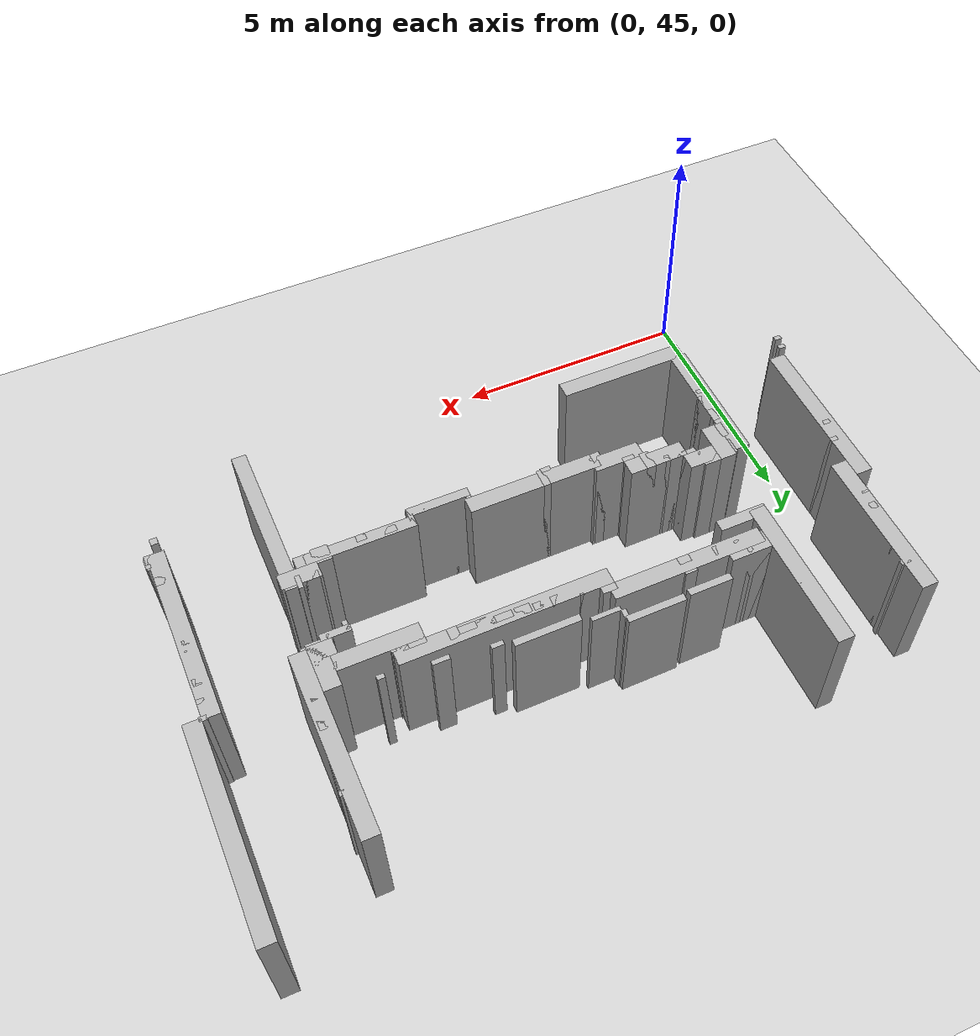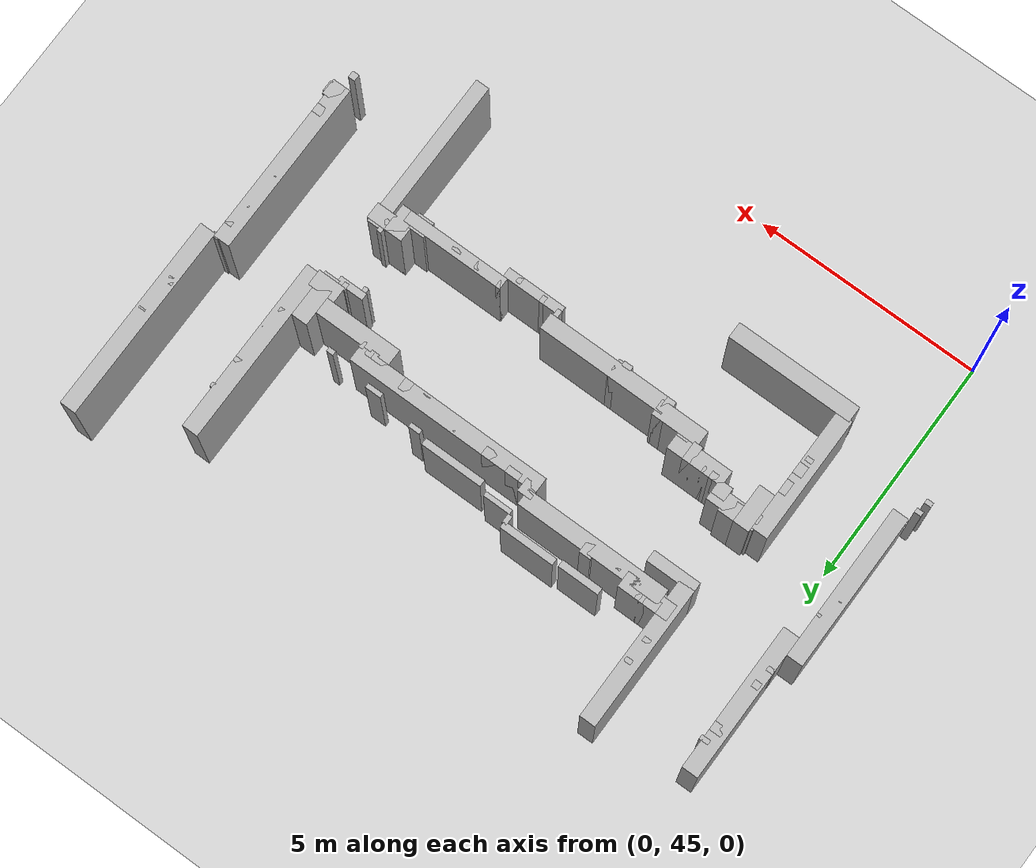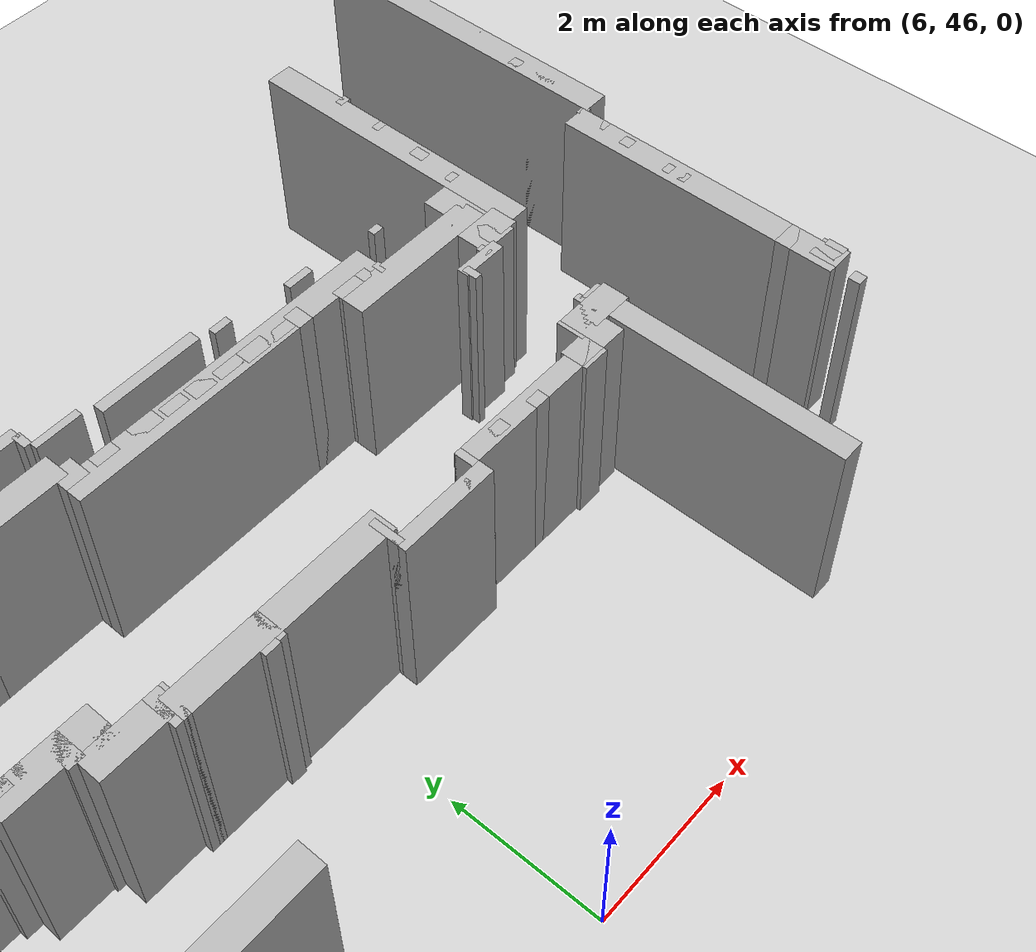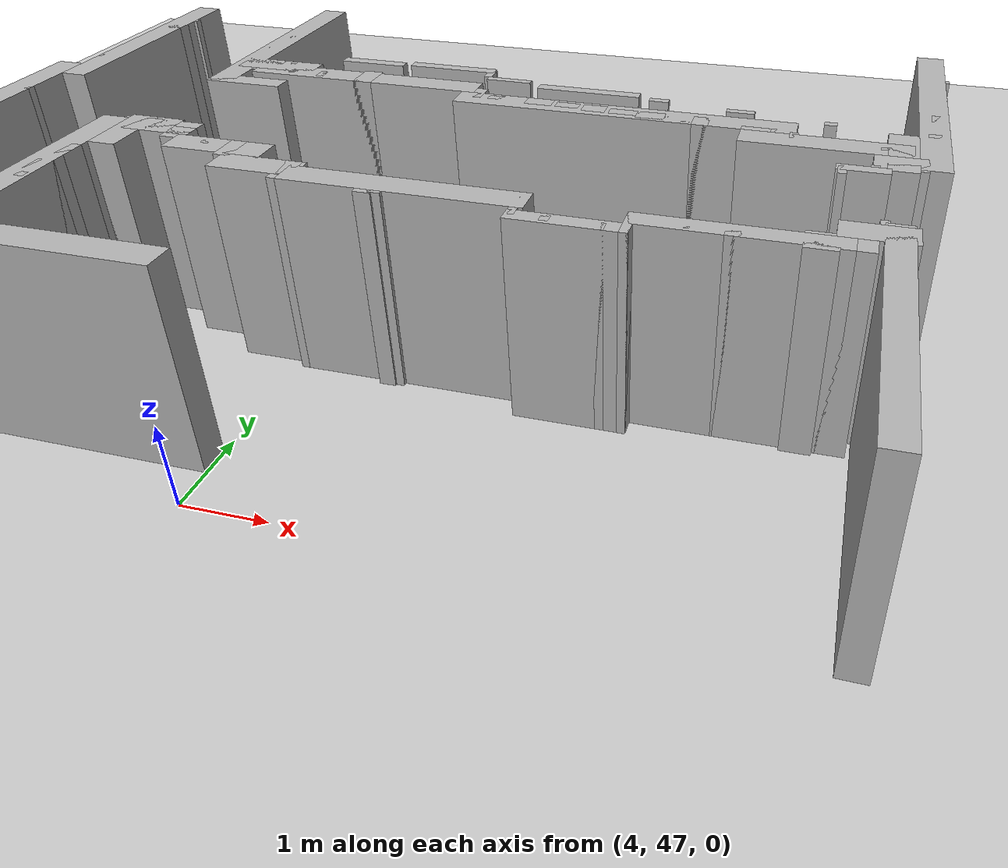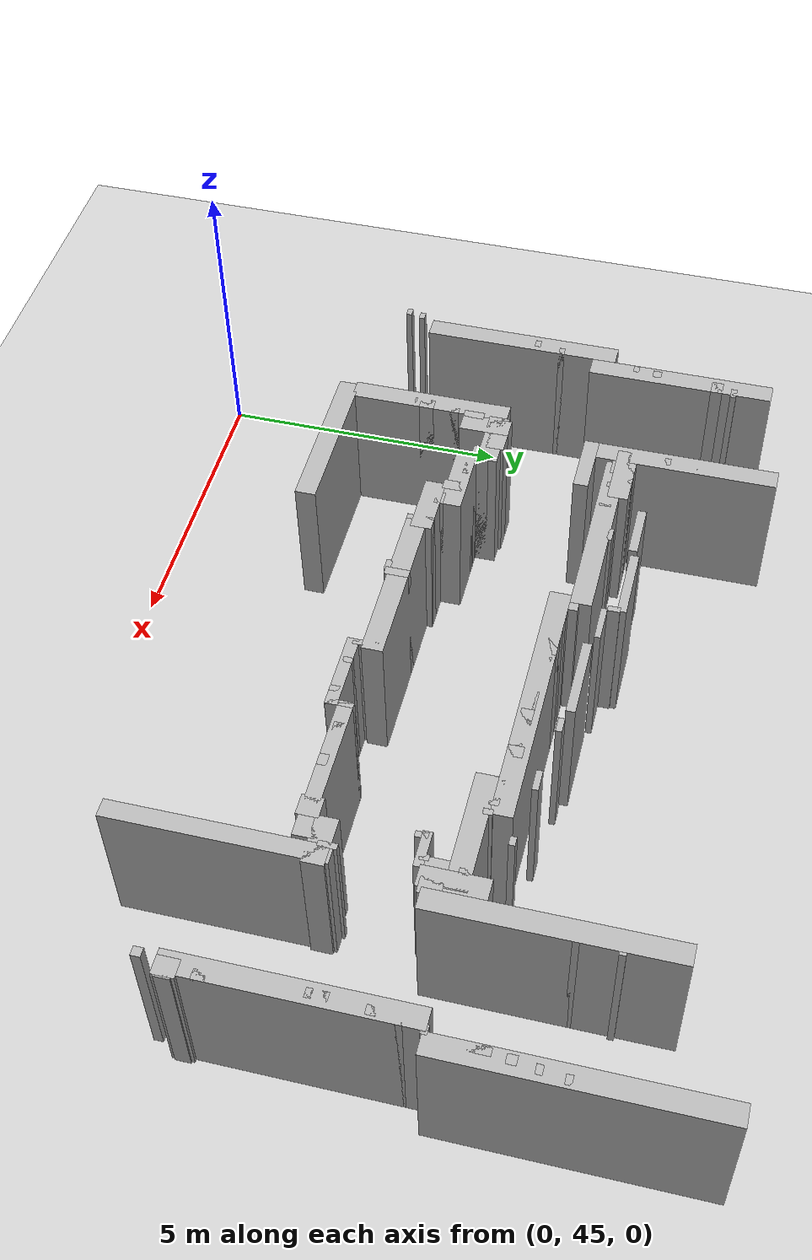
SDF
<sdf version="1.9">
 <world name="real_map_big_fix">
  <model name="ground_plane">
   <static>true</static>
   <link name="link">
    <collision name="collision">
     <geometry><plane><normal>0 0 1</normal><size>100 100</size></plane></geometry>
    </collision>
    <visual name="visual">
     <geometry><plane><normal>0 0 1</normal><size>100 100</size></plane></geometry>
     <material><ambient>0.8 0.8 0.8 1</ambient><diffuse>0.8 0.8 0.8 1</diffuse></material>
    </visual>
   </link>
  </model>
  <model name="wall_h_076">
   <static>true</static>
   <pose>11.1520 54.2870 1.2500 0 0 0</pose>
   <link name="link">
    <collision name="collision"><geometry><box><size>0.1500 0.1000 2.5000</size></box></geometry></collision>
    <visual name="visual">
     <geometry><box><size>0.1500 0.1000 2.5000</size></box></geometry>
     <material><ambient>0.7 0.7 0.7 1</ambient><diffuse>0.7 0.7 0.7 1</diffuse></material>
    </visual>
   </link>
  </model>
  <model name="wall_h_077">
   <static>true</static>
   <pose>-0.0730 54.2370 1.2500 0 0 0</pose>
   <link name="link">
    <collision name="collision"><geometry><box><size>0.2000 0.1000 2.5000</size></box></geometry></collision>
    <visual name="visual">
     <geometry><box><size>0.2000 0.1000 2.5000</size></box></geometry>
     <material><ambient>0.7 0.7 0.7 1</ambient><diffuse>0.7 0.7 0.7 1</diffuse></material>
    </visual>
   </link>
  </model>
  <model name="wall_h_078">
   <static>true</static>
   <pose>-0.1480 53.9370 1.2500 0 0 0</pose>
   <link name="link">
    <collision name="collision"><geometry><box><size>0.2500 0.2000 2.5000</size></box></geometry></collision>
    <visual name="visual">
     <geometry><box><size>0.2500 0.2000 2.5000</size></box></geometry>
     <material><ambient>0.7 0.7 0.7 1</ambient><diffuse>0.7 0.7 0.7 1</diffuse></material>
    </visual>
   </link>
  </model>
  <model name="wall_h_079">
   <static>true</static>
   <pose>13.1520 53.9370 1.2500 0 0 0</pose>
   <link name="link">
    <collision name="collision"><geometry><box><size>0.1500 0.1000 2.5000</size></box></geometry></collision>
    <visual name="visual">
     <geometry><box><size>0.1500 0.1000 2.5000</size></box></geometry>
     <material><ambient>0.7 0.7 0.7 1</ambient><diffuse>0.7 0.7 0.7 1</diffuse></material>
    </visual>
   </link>
  </model>
  <model name="wall_h_080">
   <static>true</static>
   <pose>1.9020 53.8870 1.2500 0 0 0</pose>
   <link name="link">
    <collision name="collision"><geometry><box><size>0.1500 0.1000 2.5000</size></box></geometry></collision>
    <visual name="visual">
     <geometry><box><size>0.1500 0.1000 2.5000</size></box></geometry>
     <material><ambient>0.7 0.7 0.7 1</ambient><diffuse>0.7 0.7 0.7 1</diffuse></material>
    </visual>
   </link>
  </model>
  <model name="wall_h_081">
   <static>true</static>
   <pose>11.1020 53.6370 1.2500 0 0 0</pose>
   <link name="link">
    <collision name="collision"><geometry><box><size>0.1500 0.1000 2.5000</size></box></geometry></collision>
    <visual name="visual">
     <geometry><box><size>0.1500 0.1000 2.5000</size></box></geometry>
     <material><ambient>0.7 0.7 0.7 1</ambient><diffuse>0.7 0.7 0.7 1</diffuse></material>
    </visual>
   </link>
  </model>
  <model name="wall_h_082">
   <static>true</static>
   <pose>13.1020 53.5370 1.2500 0 0 0</pose>
   <link name="link">
    <collision name="collision"><geometry><box><size>0.1500 0.1000 2.5000</size></box></geometry></collision>
    <visual name="visual">
     <geometry><box><size>0.1500 0.1000 2.5000</size></box></geometry>
     <material><ambient>0.7 0.7 0.7 1</ambient><diffuse>0.7 0.7 0.7 1</diffuse></material>
    </visual>
   </link>
  </model>
  <model name="wall_h_083">
   <static>true</static>
   <pose>1.8520 53.3870 1.2500 0 0 0</pose>
   <link name="link">
    <collision name="collision"><geometry><box><size>0.1500 0.1000 2.5000</size></box></geometry></collision>
    <visual name="visual">
     <geometry><box><size>0.1500 0.1000 2.5000</size></box></geometry>
     <material><ambient>0.7 0.7 0.7 1</ambient><diffuse>0.7 0.7 0.7 1</diffuse></material>
    </visual>
   </link>
  </model>
  <model name="wall_h_084">
   <static>true</static>
   <pose>4.6770 53.2120 1.2500 0 0 0</pose>
   <link name="link">
    <collision name="collision"><geometry><box><size>1.2000 0.1500 2.5000</size></box></geometry></collision>
    <visual name="visual">
     <geometry><box><size>1.2000 0.1500 2.5000</size></box></geometry>
     <material><ambient>0.7 0.7 0.7 1</ambient><diffuse>0.7 0.7 0.7 1</diffuse></material>
    </visual>
   </link>
  </model>
  <model name="wall_h_085">
   <static>true</static>
   <pose>3.5270 53.1620 1.2500 0 0 0</pose>
   <link name="link">
    <collision name="collision"><geometry><box><size>0.9000 0.1500 2.5000</size></box></geometry></collision>
    <visual name="visual">
     <geometry><box><size>0.9000 0.1500 2.5000</size></box></geometry>
     <material><ambient>0.7 0.7 0.7 1</ambient><diffuse>0.7 0.7 0.7 1</diffuse></material>
    </visual>
   </link>
  </model>
  <model name="wall_h_086">
   <static>true</static>
   <pose>13.0520 53.1620 1.2500 0 0 0</pose>
   <link name="link">
    <collision name="collision"><geometry><box><size>0.1500 0.1500 2.5000</size></box></geometry></collision>
    <visual name="visual">
     <geometry><box><size>0.1500 0.1500 2.5000</size></box></geometry>
     <material><ambient>0.7 0.7 0.7 1</ambient><diffuse>0.7 0.7 0.7 1</diffuse></material>
    </visual>
   </link>
  </model>
  <model name="wall_h_087">
   <static>true</static>
   <pose>11.0520 52.9370 1.2500 0 0 0</pose>
   <link name="link">
    <collision name="collision"><geometry><box><size>0.1500 0.2000 2.5000</size></box></geometry></collision>
    <visual name="visual">
     <geometry><box><size>0.1500 0.2000 2.5000</size></box></geometry>
     <material><ambient>0.7 0.7 0.7 1</ambient><diffuse>0.7 0.7 0.7 1</diffuse></material>
    </visual>
   </link>
  </model>
  <model name="wall_h_088">
   <static>true</static>
   <pose>5.5770 52.9370 1.2500 0 0 0</pose>
   <link name="link">
    <collision name="collision"><geometry><box><size>0.6000 0.1000 2.5000</size></box></geometry></collision>
    <visual name="visual">
     <geometry><box><size>0.6000 0.1000 2.5000</size></box></geometry>
     <material><ambient>0.7 0.7 0.7 1</ambient><diffuse>0.7 0.7 0.7 1</diffuse></material>
    </visual>
   </link>
  </model>
  <model name="wall_h_089">
   <static>true</static>
   <pose>-0.2480 52.8620 1.2500 0 0 0</pose>
   <link name="link">
    <collision name="collision"><geometry><box><size>0.1500 0.1500 2.5000</size></box></geometry></collision>
    <visual name="visual">
     <geometry><box><size>0.1500 0.1500 2.5000</size></box></geometry>
     <material><ambient>0.7 0.7 0.7 1</ambient><diffuse>0.7 0.7 0.7 1</diffuse></material>
    </visual>
   </link>
  </model>
  <model name="wall_h_090">
   <static>true</static>
   <pose>2.3270 52.7120 1.2500 0 0 0</pose>
   <link name="link">
    <collision name="collision"><geometry><box><size>1.1000 0.3500 2.5000</size></box></geometry></collision>
    <visual name="visual">
     <geometry><box><size>1.1000 0.3500 2.5000</size></box></geometry>
     <material><ambient>0.7 0.7 0.7 1</ambient><diffuse>0.7 0.7 0.7 1</diffuse></material>
    </visual>
   </link>
  </model>
  <model name="wall_h_091">
   <static>true</static>
   <pose>6.7020 52.8120 1.2500 0 0 0</pose>
   <link name="link">
    <collision name="collision"><geometry><box><size>1.3500 0.1500 2.5000</size></box></geometry></collision>
    <visual name="visual">
     <geometry><box><size>1.3500 0.1500 2.5000</size></box></geometry>
     <material><ambient>0.7 0.7 0.7 1</ambient><diffuse>0.7 0.7 0.7 1</diffuse></material>
    </visual>
   </link>
  </model>
  <model name="wall_h_092">
   <static>true</static>
   <pose>13.0020 52.7120 1.2500 0 0 0</pose>
   <link name="link">
    <collision name="collision"><geometry><box><size>0.1500 0.3500 2.5000</size></box></geometry></collision>
    <visual name="visual">
     <geometry><box><size>0.1500 0.3500 2.5000</size></box></geometry>
     <material><ambient>0.7 0.7 0.7 1</ambient><diffuse>0.7 0.7 0.7 1</diffuse></material>
    </visual>
   </link>
  </model>
  <model name="wall_h_093">
   <static>true</static>
   <pose>3.6770 52.5620 1.2500 0 0 0</pose>
   <link name="link">
    <collision name="collision"><geometry><box><size>3.2000 0.3500 2.5000</size></box></geometry></collision>
    <visual name="visual">
     <geometry><box><size>3.2000 0.3500 2.5000</size></box></geometry>
     <material><ambient>0.7 0.7 0.7 1</ambient><diffuse>0.7 0.7 0.7 1</diffuse></material>
    </visual>
   </link>
  </model>
  <model name="wall_h_094">
   <static>true</static>
   <pose>7.6520 52.7120 1.2500 0 0 0</pose>
   <link name="link">
    <collision name="collision"><geometry><box><size>0.2500 0.1000 2.5000</size></box></geometry></collision>
    <visual name="visual">
     <geometry><box><size>0.2500 0.1000 2.5000</size></box></geometry>
     <material><ambient>0.7 0.7 0.7 1</ambient><diffuse>0.7 0.7 0.7 1</diffuse></material>
    </visual>
   </link>
  </model>
  <model name="wall_h_095">
   <static>true</static>
   <pose>8.7020 52.5870 1.2500 0 0 0</pose>
   <link name="link">
    <collision name="collision"><geometry><box><size>0.3500 0.1000 2.5000</size></box></geometry></collision>
    <visual name="visual">
     <geometry><box><size>0.3500 0.1000 2.5000</size></box></geometry>
     <material><ambient>0.7 0.7 0.7 1</ambient><diffuse>0.7 0.7 0.7 1</diffuse></material>
    </visual>
   </link>
  </model>
  <model name="wall_h_096">
   <static>true</static>
   <pose>-0.2980 52.4870 1.2500 0 0 0</pose>
   <link name="link">
    <collision name="collision"><geometry><box><size>0.1500 0.1000 2.5000</size></box></geometry></collision>
    <visual name="visual">
     <geometry><box><size>0.1500 0.1000 2.5000</size></box></geometry>
     <material><ambient>0.7 0.7 0.7 1</ambient><diffuse>0.7 0.7 0.7 1</diffuse></material>
    </visual>
   </link>
  </model>
  <model name="wall_h_097">
   <static>true</static>
   <pose>9.8020 52.4620 1.2500 0 0 0</pose>
   <link name="link">
    <collision name="collision"><geometry><box><size>0.1500 0.1000 2.5000</size></box></geometry></collision>
    <visual name="visual">
     <geometry><box><size>0.1500 0.1000 2.5000</size></box></geometry>
     <material><ambient>0.7 0.7 0.7 1</ambient><diffuse>0.7 0.7 0.7 1</diffuse></material>
    </visual>
   </link>
  </model>
  <model name="wall_h_098">
   <static>true</static>
   <pose>11.0020 52.3870 1.2500 0 0 0</pose>
   <link name="link">
    <collision name="collision"><geometry><box><size>0.1500 0.1000 2.5000</size></box></geometry></collision>
    <visual name="visual">
     <geometry><box><size>0.1500 0.1000 2.5000</size></box></geometry>
     <material><ambient>0.7 0.7 0.7 1</ambient><diffuse>0.7 0.7 0.7 1</diffuse></material>
    </visual>
   </link>
  </model>
  <model name="wall_h_099">
   <static>true</static>
   <pose>7.2770 52.2120 1.2500 0 0 0</pose>
   <link name="link">
    <collision name="collision"><geometry><box><size>4.3000 0.3500 2.5000</size></box></geometry></collision>
    <visual name="visual">
     <geometry><box><size>4.3000 0.3500 2.5000</size></box></geometry>
     <material><ambient>0.7 0.7 0.7 1</ambient><diffuse>0.7 0.7 0.7 1</diffuse></material>
    </visual>
   </link>
  </model>
  <model name="wall_h_100">
   <static>true</static>
   <pose>2.2020 52.0620 1.2500 0 0 0</pose>
   <link name="link">
    <collision name="collision"><geometry><box><size>1.0500 0.2500 2.5000</size></box></geometry></collision>
    <visual name="visual">
     <geometry><box><size>1.0500 0.2500 2.5000</size></box></geometry>
     <material><ambient>0.7 0.7 0.7 1</ambient><diffuse>0.7 0.7 0.7 1</diffuse></material>
    </visual>
   </link>
  </model>
  <model name="wall_h_101">
   <static>true</static>
   <pose>9.7770 51.8620 1.2500 0 0 0</pose>
   <link name="link">
    <collision name="collision"><geometry><box><size>2.0000 0.3500 2.5000</size></box></geometry></collision>
    <visual name="visual">
     <geometry><box><size>2.0000 0.3500 2.5000</size></box></geometry>
     <material><ambient>0.7 0.7 0.7 1</ambient><diffuse>0.7 0.7 0.7 1</diffuse></material>
    </visual>
   </link>
  </model>
  <model name="wall_h_102">
   <static>true</static>
   <pose>12.9020 51.9620 1.2500 0 0 0</pose>
   <link name="link">
    <collision name="collision"><geometry><box><size>0.1500 0.1000 2.5000</size></box></geometry></collision>
    <visual name="visual">
     <geometry><box><size>0.1500 0.1000 2.5000</size></box></geometry>
     <material><ambient>0.7 0.7 0.7 1</ambient><diffuse>0.7 0.7 0.7 1</diffuse></material>
    </visual>
   </link>
  </model>
  <model name="wall_h_103">
   <static>true</static>
   <pose>10.6270 51.5120 1.2500 0 0 0</pose>
   <link name="link">
    <collision name="collision"><geometry><box><size>0.6000 0.3500 2.5000</size></box></geometry></collision>
    <visual name="visual">
     <geometry><box><size>0.6000 0.3500 2.5000</size></box></geometry>
     <material><ambient>0.7 0.7 0.7 1</ambient><diffuse>0.7 0.7 0.7 1</diffuse></material>
    </visual>
   </link>
  </model>
  <model name="wall_h_104">
   <static>true</static>
   <pose>12.8520 51.6120 1.2500 0 0 0</pose>
   <link name="link">
    <collision name="collision"><geometry><box><size>0.1500 0.1000 2.5000</size></box></geometry></collision>
    <visual name="visual">
     <geometry><box><size>0.1500 0.1000 2.5000</size></box></geometry>
     <material><ambient>0.7 0.7 0.7 1</ambient><diffuse>0.7 0.7 0.7 1</diffuse></material>
    </visual>
   </link>
  </model>
  <model name="wall_h_105">
   <static>true</static>
   <pose>10.2270 51.2620 1.2500 0 0 0</pose>
   <link name="link">
    <collision name="collision"><geometry><box><size>0.6000 0.1500 2.5000</size></box></geometry></collision>
    <visual name="visual">
     <geometry><box><size>0.6000 0.1500 2.5000</size></box></geometry>
     <material><ambient>0.7 0.7 0.7 1</ambient><diffuse>0.7 0.7 0.7 1</diffuse></material>
    </visual>
   </link>
  </model>
  <model name="wall_h_106">
   <static>true</static>
   <pose>12.8020 51.2120 1.2500 0 0 0</pose>
   <link name="link">
    <collision name="collision"><geometry><box><size>0.1500 0.1500 2.5000</size></box></geometry></collision>
    <visual name="visual">
     <geometry><box><size>0.1500 0.1500 2.5000</size></box></geometry>
     <material><ambient>0.7 0.7 0.7 1</ambient><diffuse>0.7 0.7 0.7 1</diffuse></material>
    </visual>
   </link>
  </model>
  <model name="wall_h_107">
   <static>true</static>
   <pose>-0.4480 51.1120 1.2500 0 0 0</pose>
   <link name="link">
    <collision name="collision"><geometry><box><size>0.1500 0.1000 2.5000</size></box></geometry></collision>
    <visual name="visual">
     <geometry><box><size>0.1500 0.1000 2.5000</size></box></geometry>
     <material><ambient>0.7 0.7 0.7 1</ambient><diffuse>0.7 0.7 0.7 1</diffuse></material>
    </visual>
   </link>
  </model>
  <model name="wall_h_108">
   <static>true</static>
   <pose>-0.5480 50.6620 1.2500 0 0 0</pose>
   <link name="link">
    <collision name="collision"><geometry><box><size>0.1500 0.1000 2.5000</size></box></geometry></collision>
    <visual name="visual">
     <geometry><box><size>0.1500 0.1000 2.5000</size></box></geometry>
     <material><ambient>0.7 0.7 0.7 1</ambient><diffuse>0.7 0.7 0.7 1</diffuse></material>
    </visual>
   </link>
  </model>
  <model name="wall_h_109">
   <static>true</static>
   <pose>2.0020 50.4120 1.2500 0 0 0</pose>
   <link name="link">
    <collision name="collision"><geometry><box><size>1.0500 0.3500 2.5000</size></box></geometry></collision>
    <visual name="visual">
     <geometry><box><size>1.0500 0.3500 2.5000</size></box></geometry>
     <material><ambient>0.7 0.7 0.7 1</ambient><diffuse>0.7 0.7 0.7 1</diffuse></material>
    </visual>
   </link>
  </model>
  <model name="wall_h_110">
   <static>true</static>
   <pose>12.7520 50.5620 1.2500 0 0 0</pose>
   <link name="link">
    <collision name="collision"><geometry><box><size>0.1500 0.1000 2.5000</size></box></geometry></collision>
    <visual name="visual">
     <geometry><box><size>0.1500 0.1000 2.5000</size></box></geometry>
     <material><ambient>0.7 0.7 0.7 1</ambient><diffuse>0.7 0.7 0.7 1</diffuse></material>
    </visual>
   </link>
  </model>
  <model name="wall_h_111">
   <static>true</static>
   <pose>12.7520 50.3370 1.2500 0 0 0</pose>
   <link name="link">
    <collision name="collision"><geometry><box><size>0.1500 0.1000 2.5000</size></box></geometry></collision>
    <visual name="visual">
     <geometry><box><size>0.1500 0.1000 2.5000</size></box></geometry>
     <material><ambient>0.7 0.7 0.7 1</ambient><diffuse>0.7 0.7 0.7 1</diffuse></material>
    </visual>
   </link>
  </model>
  <model name="wall_h_112">
   <static>true</static>
   <pose>3.0520 50.0620 1.2500 0 0 0</pose>
   <link name="link">
    <collision name="collision"><geometry><box><size>1.2500 0.3500 2.5000</size></box></geometry></collision>
    <visual name="visual">
     <geometry><box><size>1.2500 0.3500 2.5000</size></box></geometry>
     <material><ambient>0.7 0.7 0.7 1</ambient><diffuse>0.7 0.7 0.7 1</diffuse></material>
    </visual>
   </link>
  </model>
  <model name="wall_h_113">
   <static>true</static>
   <pose>1.5020 49.9620 1.2500 0 0 0</pose>
   <link name="link">
    <collision name="collision"><geometry><box><size>0.1500 0.3500 2.5000</size></box></geometry></collision>
    <visual name="visual">
     <geometry><box><size>0.1500 0.3500 2.5000</size></box></geometry>
     <material><ambient>0.7 0.7 0.7 1</ambient><diffuse>0.7 0.7 0.7 1</diffuse></material>
    </visual>
   </link>
  </model>
  <model name="wall_h_114">
   <static>true</static>
   <pose>10.4270 49.8120 1.2500 0 0 0</pose>
   <link name="link">
    <collision name="collision"><geometry><box><size>0.8000 0.3500 2.5000</size></box></geometry></collision>
    <visual name="visual">
     <geometry><box><size>0.8000 0.3500 2.5000</size></box></geometry>
     <material><ambient>0.7 0.7 0.7 1</ambient><diffuse>0.7 0.7 0.7 1</diffuse></material>
    </visual>
   </link>
  </model>
  <model name="wall_h_115">
   <static>true</static>
   <pose>3.7520 49.7120 1.2500 0 0 0</pose>
   <link name="link">
    <collision name="collision"><geometry><box><size>1.0500 0.3500 2.5000</size></box></geometry></collision>
    <visual name="visual">
     <geometry><box><size>1.0500 0.3500 2.5000</size></box></geometry>
     <material><ambient>0.7 0.7 0.7 1</ambient><diffuse>0.7 0.7 0.7 1</diffuse></material>
    </visual>
   </link>
  </model>
  <model name="wall_h_116">
   <static>true</static>
   <pose>5.5270 49.6120 1.2500 0 0 0</pose>
   <link name="link">
    <collision name="collision"><geometry><box><size>2.8000 0.3500 2.5000</size></box></geometry></collision>
    <visual name="visual">
     <geometry><box><size>2.8000 0.3500 2.5000</size></box></geometry>
     <material><ambient>0.7 0.7 0.7 1</ambient><diffuse>0.7 0.7 0.7 1</diffuse></material>
    </visual>
   </link>
  </model>
  <model name="wall_h_117">
   <static>true</static>
   <pose>1.4520 49.5370 1.2500 0 0 0</pose>
   <link name="link">
    <collision name="collision"><geometry><box><size>0.1500 0.3000 2.5000</size></box></geometry></collision>
    <visual name="visual">
     <geometry><box><size>0.1500 0.3000 2.5000</size></box></geometry>
     <material><ambient>0.7 0.7 0.7 1</ambient><diffuse>0.7 0.7 0.7 1</diffuse></material>
    </visual>
   </link>
  </model>
  <model name="wall_h_118">
   <static>true</static>
   <pose>9.1020 49.5120 1.2500 0 0 0</pose>
   <link name="link">
    <collision name="collision"><geometry><box><size>2.2500 0.2500 2.5000</size></box></geometry></collision>
    <visual name="visual">
     <geometry><box><size>2.2500 0.2500 2.5000</size></box></geometry>
     <material><ambient>0.7 0.7 0.7 1</ambient><diffuse>0.7 0.7 0.7 1</diffuse></material>
    </visual>
   </link>
  </model>
  <model name="wall_h_119">
   <static>true</static>
   <pose>5.1770 49.4120 1.2500 0 0 0</pose>
   <link name="link">
    <collision name="collision"><geometry><box><size>0.2000 0.1000 2.5000</size></box></geometry></collision>
    <visual name="visual">
     <geometry><box><size>0.2000 0.1000 2.5000</size></box></geometry>
     <material><ambient>0.7 0.7 0.7 1</ambient><diffuse>0.7 0.7 0.7 1</diffuse></material>
    </visual>
   </link>
  </model>
  <model name="wall_h_120">
   <static>true</static>
   <pose>7.4270 49.2870 1.2500 0 0 0</pose>
   <link name="link">
    <collision name="collision"><geometry><box><size>1.3000 0.2000 2.5000</size></box></geometry></collision>
    <visual name="visual">
     <geometry><box><size>1.3000 0.2000 2.5000</size></box></geometry>
     <material><ambient>0.7 0.7 0.7 1</ambient><diffuse>0.7 0.7 0.7 1</diffuse></material>
    </visual>
   </link>
  </model>
  <model name="wall_h_121">
   <static>true</static>
   <pose>1.4270 49.1120 1.2500 0 0 0</pose>
   <link name="link">
    <collision name="collision"><geometry><box><size>0.2000 0.2500 2.5000</size></box></geometry></collision>
    <visual name="visual">
     <geometry><box><size>0.2000 0.2500 2.5000</size></box></geometry>
     <material><ambient>0.7 0.7 0.7 1</ambient><diffuse>0.7 0.7 0.7 1</diffuse></material>
    </visual>
   </link>
  </model>
  <model name="wall_h_122">
   <static>true</static>
   <pose>12.7520 48.8370 1.2500 0 0 0</pose>
   <link name="link">
    <collision name="collision"><geometry><box><size>0.3500 0.2000 2.5000</size></box></geometry></collision>
    <visual name="visual">
     <geometry><box><size>0.3500 0.2000 2.5000</size></box></geometry>
     <material><ambient>0.7 0.7 0.7 1</ambient><diffuse>0.7 0.7 0.7 1</diffuse></material>
    </visual>
   </link>
  </model>
  <model name="wall_h_123">
   <static>true</static>
   <pose>1.4020 48.8620 1.2500 0 0 0</pose>
   <link name="link">
    <collision name="collision"><geometry><box><size>0.1500 0.1000 2.5000</size></box></geometry></collision>
    <visual name="visual">
     <geometry><box><size>0.1500 0.1000 2.5000</size></box></geometry>
     <material><ambient>0.7 0.7 0.7 1</ambient><diffuse>0.7 0.7 0.7 1</diffuse></material>
    </visual>
   </link>
  </model>
  <model name="wall_h_124">
   <static>true</static>
   <pose>12.8270 48.3620 1.2500 0 0 0</pose>
   <link name="link">
    <collision name="collision"><geometry><box><size>0.3000 0.3500 2.5000</size></box></geometry></collision>
    <visual name="visual">
     <geometry><box><size>0.3000 0.3500 2.5000</size></box></geometry>
     <material><ambient>0.7 0.7 0.7 1</ambient><diffuse>0.7 0.7 0.7 1</diffuse></material>
    </visual>
   </link>
  </model>
  <model name="wall_h_125">
   <static>true</static>
   <pose>-0.7980 48.4620 1.2500 0 0 0</pose>
   <link name="link">
    <collision name="collision"><geometry><box><size>0.1500 0.1000 2.5000</size></box></geometry></collision>
    <visual name="visual">
     <geometry><box><size>0.1500 0.1000 2.5000</size></box></geometry>
     <material><ambient>0.7 0.7 0.7 1</ambient><diffuse>0.7 0.7 0.7 1</diffuse></material>
    </visual>
   </link>
  </model>
  <model name="wall_h_126">
   <static>true</static>
   <pose>-0.8480 48.2120 1.2500 0 0 0</pose>
   <link name="link">
    <collision name="collision"><geometry><box><size>0.1500 0.1000 2.5000</size></box></geometry></collision>
    <visual name="visual">
     <geometry><box><size>0.1500 0.1000 2.5000</size></box></geometry>
     <material><ambient>0.7 0.7 0.7 1</ambient><diffuse>0.7 0.7 0.7 1</diffuse></material>
    </visual>
   </link>
  </model>
  <model name="wall_h_127">
   <static>true</static>
   <pose>12.7020 47.9120 1.2500 0 0 0</pose>
   <link name="link">
    <collision name="collision"><geometry><box><size>0.1500 0.1500 2.5000</size></box></geometry></collision>
    <visual name="visual">
     <geometry><box><size>0.1500 0.1500 2.5000</size></box></geometry>
     <material><ambient>0.7 0.7 0.7 1</ambient><diffuse>0.7 0.7 0.7 1</diffuse></material>
    </visual>
   </link>
  </model>
  <model name="wall_h_128">
   <static>true</static>
   <pose>2.6020 47.6620 1.2500 0 0 0</pose>
   <link name="link">
    <collision name="collision"><geometry><box><size>2.7500 0.3500 2.5000</size></box></geometry></collision>
    <visual name="visual">
     <geometry><box><size>2.7500 0.3500 2.5000</size></box></geometry>
     <material><ambient>0.7 0.7 0.7 1</ambient><diffuse>0.7 0.7 0.7 1</diffuse></material>
    </visual>
   </link>
  </model>
  <model name="wall_v_040">
   <static>true</static>
   <pose>-0.5480 50.3870 1.2500 0 0 0</pose>
   <link name="link">
    <collision name="collision"><geometry><box><size>0.3500 3.4000 2.5000</size></box></geometry></collision>
    <visual name="visual">
     <geometry><box><size>0.3500 3.4000 2.5000</size></box></geometry>
     <material><ambient>0.7 0.7 0.7 1</ambient><diffuse>0.7 0.7 0.7 1</diffuse></material>
    </visual>
   </link>
  </model>
  <model name="wall_v_046">
   <static>true</static>
   <pose>-0.1980 53.2870 1.2500 0 0 0</pose>
   <link name="link">
    <collision name="collision"><geometry><box><size>0.3500 3.2000 2.5000</size></box></geometry></collision>
    <visual name="visual">
     <geometry><box><size>0.3500 3.2000 2.5000</size></box></geometry>
     <material><ambient>0.7 0.7 0.7 1</ambient><diffuse>0.7 0.7 0.7 1</diffuse></material>
    </visual>
   </link>
  </model>
  <model name="wall_v_066">
   <static>true</static>
   <pose>1.3520 49.1620 1.2500 0 0 0</pose>
   <link name="link">
    <collision name="collision"><geometry><box><size>0.3500 2.7500 2.5000</size></box></geometry></collision>
    <visual name="visual">
     <geometry><box><size>0.3500 2.7500 2.5000</size></box></geometry>
     <material><ambient>0.7 0.7 0.7 1</ambient><diffuse>0.7 0.7 0.7 1</diffuse></material>
    </visual>
   </link>
  </model>
  <model name="wall_v_072">
   <static>true</static>
   <pose>1.7020 50.2120 1.2500 0 0 0</pose>
   <link name="link">
    <collision name="collision"><geometry><box><size>0.3500 0.8500 2.5000</size></box></geometry></collision>
    <visual name="visual">
     <geometry><box><size>0.3500 0.8500 2.5000</size></box></geometry>
     <material><ambient>0.7 0.7 0.7 1</ambient><diffuse>0.7 0.7 0.7 1</diffuse></material>
    </visual>
   </link>
  </model>
  <model name="wall_v_076">
   <static>true</static>
   <pose>1.8520 53.6120 1.2500 0 0 0</pose>
   <link name="link">
    <collision name="collision"><geometry><box><size>0.3500 3.2500 2.5000</size></box></geometry></collision>
    <visual name="visual">
     <geometry><box><size>0.3500 3.2500 2.5000</size></box></geometry>
     <material><ambient>0.7 0.7 0.7 1</ambient><diffuse>0.7 0.7 0.7 1</diffuse></material>
    </visual>
   </link>
  </model>
  <model name="wall_v_082">
   <static>true</static>
   <pose>2.0520 50.4620 1.2500 0 0 0</pose>
   <link name="link">
    <collision name="collision"><geometry><box><size>0.3500 0.3500 2.5000</size></box></geometry></collision>
    <visual name="visual">
     <geometry><box><size>0.3500 0.3500 2.5000</size></box></geometry>
     <material><ambient>0.7 0.7 0.7 1</ambient><diffuse>0.7 0.7 0.7 1</diffuse></material>
    </visual>
   </link>
  </model>
  <model name="wall_v_086">
   <static>true</static>
   <pose>2.1770 52.6870 1.2500 0 0 0</pose>
   <link name="link">
    <collision name="collision"><geometry><box><size>0.3000 0.4000 2.5000</size></box></geometry></collision>
    <visual name="visual">
     <geometry><box><size>0.3000 0.4000 2.5000</size></box></geometry>
     <material><ambient>0.7 0.7 0.7 1</ambient><diffuse>0.7 0.7 0.7 1</diffuse></material>
    </visual>
   </link>
  </model>
  <model name="wall_v_089">
   <static>true</static>
   <pose>2.3770 50.2870 1.2500 0 0 0</pose>
   <link name="link">
    <collision name="collision"><geometry><box><size>0.3000 0.3000 2.5000</size></box></geometry></collision>
    <visual name="visual">
     <geometry><box><size>0.3000 0.3000 2.5000</size></box></geometry>
     <material><ambient>0.7 0.7 0.7 1</ambient><diffuse>0.7 0.7 0.7 1</diffuse></material>
    </visual>
   </link>
  </model>
  <model name="wall_v_094">
   <static>true</static>
   <pose>2.4520 52.8120 1.2500 0 0 0</pose>
   <link name="link">
    <collision name="collision"><geometry><box><size>0.1000 0.1500 2.5000</size></box></geometry></collision>
    <visual name="visual">
     <geometry><box><size>0.1000 0.1500 2.5000</size></box></geometry>
     <material><ambient>0.7 0.7 0.7 1</ambient><diffuse>0.7 0.7 0.7 1</diffuse></material>
    </visual>
   </link>
  </model>
  <model name="wall_v_096">
   <static>true</static>
   <pose>2.6020 52.5620 1.2500 0 0 0</pose>
   <link name="link">
    <collision name="collision"><geometry><box><size>0.1000 0.1500 2.5000</size></box></geometry></collision>
    <visual name="visual">
     <geometry><box><size>0.1000 0.1500 2.5000</size></box></geometry>
     <material><ambient>0.7 0.7 0.7 1</ambient><diffuse>0.7 0.7 0.7 1</diffuse></material>
    </visual>
   </link>
  </model>
  <model name="wall_v_097">
   <static>true</static>
   <pose>2.6520 50.1620 1.2500 0 0 0</pose>
   <link name="link">
    <collision name="collision"><geometry><box><size>0.1500 0.1500 2.5000</size></box></geometry></collision>
    <visual name="visual">
     <geometry><box><size>0.1500 0.1500 2.5000</size></box></geometry>
     <material><ambient>0.7 0.7 0.7 1</ambient><diffuse>0.7 0.7 0.7 1</diffuse></material>
    </visual>
   </link>
  </model>
  <model name="wall_v_102">
   <static>true</static>
   <pose>2.8520 50.1620 1.2500 0 0 0</pose>
   <link name="link">
    <collision name="collision"><geometry><box><size>0.1000 0.1500 2.5000</size></box></geometry></collision>
    <visual name="visual">
     <geometry><box><size>0.1000 0.1500 2.5000</size></box></geometry>
     <material><ambient>0.7 0.7 0.7 1</ambient><diffuse>0.7 0.7 0.7 1</diffuse></material>
    </visual>
   </link>
  </model>
  <model name="wall_v_110">
   <static>true</static>
   <pose>3.0520 52.5370 1.2500 0 0 0</pose>
   <link name="link">
    <collision name="collision"><geometry><box><size>0.1000 0.2000 2.5000</size></box></geometry></collision>
    <visual name="visual">
     <geometry><box><size>0.1000 0.2000 2.5000</size></box></geometry>
     <material><ambient>0.7 0.7 0.7 1</ambient><diffuse>0.7 0.7 0.7 1</diffuse></material>
    </visual>
   </link>
  </model>
  <model name="wall_v_112">
   <static>true</static>
   <pose>3.2270 50.0370 1.2500 0 0 0</pose>
   <link name="link">
    <collision name="collision"><geometry><box><size>0.2000 0.4000 2.5000</size></box></geometry></collision>
    <visual name="visual">
     <geometry><box><size>0.2000 0.4000 2.5000</size></box></geometry>
     <material><ambient>0.7 0.7 0.7 1</ambient><diffuse>0.7 0.7 0.7 1</diffuse></material>
    </visual>
   </link>
  </model>
  <model name="wall_v_118">
   <static>true</static>
   <pose>3.5520 49.8620 1.2500 0 0 0</pose>
   <link name="link">
    <collision name="collision"><geometry><box><size>0.2500 0.1500 2.5000</size></box></geometry></collision>
    <visual name="visual">
     <geometry><box><size>0.2500 0.1500 2.5000</size></box></geometry>
     <material><ambient>0.7 0.7 0.7 1</ambient><diffuse>0.7 0.7 0.7 1</diffuse></material>
    </visual>
   </link>
  </model>
  <model name="wall_v_119">
   <static>true</static>
   <pose>3.7020 52.5870 1.2500 0 0 0</pose>
   <link name="link">
    <collision name="collision"><geometry><box><size>0.2500 0.4000 2.5000</size></box></geometry></collision>
    <visual name="visual">
     <geometry><box><size>0.2500 0.4000 2.5000</size></box></geometry>
     <material><ambient>0.7 0.7 0.7 1</ambient><diffuse>0.7 0.7 0.7 1</diffuse></material>
    </visual>
   </link>
  </model>
  <model name="wall_v_124">
   <static>true</static>
   <pose>4.1270 49.6620 1.2500 0 0 0</pose>
   <link name="link">
    <collision name="collision"><geometry><box><size>0.2000 0.4500 2.5000</size></box></geometry></collision>
    <visual name="visual">
     <geometry><box><size>0.2000 0.4500 2.5000</size></box></geometry>
     <material><ambient>0.7 0.7 0.7 1</ambient><diffuse>0.7 0.7 0.7 1</diffuse></material>
    </visual>
   </link>
  </model>
  <model name="wall_v_139">
   <static>true</static>
   <pose>5.2770 52.3870 1.2500 0 0 0</pose>
   <link name="link">
    <collision name="collision"><geometry><box><size>0.3000 0.3000 2.5000</size></box></geometry></collision>
    <visual name="visual">
     <geometry><box><size>0.3000 0.3000 2.5000</size></box></geometry>
     <material><ambient>0.7 0.7 0.7 1</ambient><diffuse>0.7 0.7 0.7 1</diffuse></material>
    </visual>
   </link>
  </model>
  <model name="wall_v_140">
   <static>true</static>
   <pose>5.2520 53.0870 1.2500 0 0 0</pose>
   <link name="link">
    <collision name="collision"><geometry><box><size>0.1000 0.2000 2.5000</size></box></geometry></collision>
    <visual name="visual">
     <geometry><box><size>0.1000 0.2000 2.5000</size></box></geometry>
     <material><ambient>0.7 0.7 0.7 1</ambient><diffuse>0.7 0.7 0.7 1</diffuse></material>
    </visual>
   </link>
  </model>
  <model name="wall_v_141">
   <static>true</static>
   <pose>5.3020 49.5870 1.2500 0 0 0</pose>
   <link name="link">
    <collision name="collision"><geometry><box><size>0.1500 0.4000 2.5000</size></box></geometry></collision>
    <visual name="visual">
     <geometry><box><size>0.1500 0.4000 2.5000</size></box></geometry>
     <material><ambient>0.7 0.7 0.7 1</ambient><diffuse>0.7 0.7 0.7 1</diffuse></material>
    </visual>
   </link>
  </model>
  <model name="wall_v_148">
   <static>true</static>
   <pose>5.6770 52.3120 1.2500 0 0 0</pose>
   <link name="link">
    <collision name="collision"><geometry><box><size>0.3000 0.1500 2.5000</size></box></geometry></collision>
    <visual name="visual">
     <geometry><box><size>0.3000 0.1500 2.5000</size></box></geometry>
     <material><ambient>0.7 0.7 0.7 1</ambient><diffuse>0.7 0.7 0.7 1</diffuse></material>
    </visual>
   </link>
  </model>
  <model name="wall_v_155">
   <static>true</static>
   <pose>6.2020 52.2870 1.2500 0 0 0</pose>
   <link name="link">
    <collision name="collision"><geometry><box><size>0.3500 0.2000 2.5000</size></box></geometry></collision>
    <visual name="visual">
     <geometry><box><size>0.3500 0.2000 2.5000</size></box></geometry>
     <material><ambient>0.7 0.7 0.7 1</ambient><diffuse>0.7 0.7 0.7 1</diffuse></material>
    </visual>
   </link>
  </model>
  <model name="wall_v_161">
   <static>true</static>
   <pose>6.5770 52.2620 1.2500 0 0 0</pose>
   <link name="link">
    <collision name="collision"><geometry><box><size>0.3000 0.1500 2.5000</size></box></geometry></collision>
    <visual name="visual">
     <geometry><box><size>0.3000 0.1500 2.5000</size></box></geometry>
     <material><ambient>0.7 0.7 0.7 1</ambient><diffuse>0.7 0.7 0.7 1</diffuse></material>
    </visual>
   </link>
  </model>
  <model name="wall_v_168">
   <static>true</static>
   <pose>6.9270 52.2370 1.2500 0 0 0</pose>
   <link name="link">
    <collision name="collision"><geometry><box><size>0.3000 0.2000 2.5000</size></box></geometry></collision>
    <visual name="visual">
     <geometry><box><size>0.3000 0.2000 2.5000</size></box></geometry>
     <material><ambient>0.7 0.7 0.7 1</ambient><diffuse>0.7 0.7 0.7 1</diffuse></material>
    </visual>
   </link>
  </model>
  <model name="wall_v_169">
   <static>true</static>
   <pose>6.8270 49.4870 1.2500 0 0 0</pose>
   <link name="link">
    <collision name="collision"><geometry><box><size>0.1000 0.4000 2.5000</size></box></geometry></collision>
    <visual name="visual">
     <geometry><box><size>0.1000 0.4000 2.5000</size></box></geometry>
     <material><ambient>0.7 0.7 0.7 1</ambient><diffuse>0.7 0.7 0.7 1</diffuse></material>
    </visual>
   </link>
  </model>
  <model name="wall_v_176">
   <static>true</static>
   <pose>7.3020 52.2120 1.2500 0 0 0</pose>
   <link name="link">
    <collision name="collision"><geometry><box><size>0.3500 0.1500 2.5000</size></box></geometry></collision>
    <visual name="visual">
     <geometry><box><size>0.3500 0.1500 2.5000</size></box></geometry>
     <material><ambient>0.7 0.7 0.7 1</ambient><diffuse>0.7 0.7 0.7 1</diffuse></material>
    </visual>
   </link>
  </model>
  <model name="wall_v_177">
   <static>true</static>
   <pose>7.2020 49.3120 1.2500 0 0 0</pose>
   <link name="link">
    <collision name="collision"><geometry><box><size>0.1000 0.1500 2.5000</size></box></geometry></collision>
    <visual name="visual">
     <geometry><box><size>0.1000 0.1500 2.5000</size></box></geometry>
     <material><ambient>0.7 0.7 0.7 1</ambient><diffuse>0.7 0.7 0.7 1</diffuse></material>
    </visual>
   </link>
  </model>
  <model name="wall_v_183">
   <static>true</static>
   <pose>7.6520 52.1870 1.2500 0 0 0</pose>
   <link name="link">
    <collision name="collision"><geometry><box><size>0.3500 0.2000 2.5000</size></box></geometry></collision>
    <visual name="visual">
     <geometry><box><size>0.3500 0.2000 2.5000</size></box></geometry>
     <material><ambient>0.7 0.7 0.7 1</ambient><diffuse>0.7 0.7 0.7 1</diffuse></material>
    </visual>
   </link>
  </model>
  <model name="wall_v_186">
   <static>true</static>
   <pose>7.7770 49.2620 1.2500 0 0 0</pose>
   <link name="link">
    <collision name="collision"><geometry><box><size>0.1000 0.1500 2.5000</size></box></geometry></collision>
    <visual name="visual">
     <geometry><box><size>0.1000 0.1500 2.5000</size></box></geometry>
     <material><ambient>0.7 0.7 0.7 1</ambient><diffuse>0.7 0.7 0.7 1</diffuse></material>
    </visual>
   </link>
  </model>
  <model name="wall_v_188">
   <static>true</static>
   <pose>8.0020 52.1620 1.2500 0 0 0</pose>
   <link name="link">
    <collision name="collision"><geometry><box><size>0.3500 0.1500 2.5000</size></box></geometry></collision>
    <visual name="visual">
     <geometry><box><size>0.3500 0.1500 2.5000</size></box></geometry>
     <material><ambient>0.7 0.7 0.7 1</ambient><diffuse>0.7 0.7 0.7 1</diffuse></material>
    </visual>
   </link>
  </model>
  <model name="wall_v_192">
   <static>true</static>
   <pose>8.0270 49.4120 1.2500 0 0 0</pose>
   <link name="link">
    <collision name="collision"><geometry><box><size>0.1000 0.4500 2.5000</size></box></geometry></collision>
    <visual name="visual">
     <geometry><box><size>0.1000 0.4500 2.5000</size></box></geometry>
     <material><ambient>0.7 0.7 0.7 1</ambient><diffuse>0.7 0.7 0.7 1</diffuse></material>
    </visual>
   </link>
  </model>
  <model name="wall_v_194">
   <static>true</static>
   <pose>8.2770 52.1620 1.2500 0 0 0</pose>
   <link name="link">
    <collision name="collision"><geometry><box><size>0.2000 0.2500 2.5000</size></box></geometry></collision>
    <visual name="visual">
     <geometry><box><size>0.2000 0.2500 2.5000</size></box></geometry>
     <material><ambient>0.7 0.7 0.7 1</ambient><diffuse>0.7 0.7 0.7 1</diffuse></material>
    </visual>
   </link>
  </model>
  <model name="wall_v_196">
   <static>true</static>
   <pose>8.5020 49.5120 1.2500 0 0 0</pose>
   <link name="link">
    <collision name="collision"><geometry><box><size>0.2500 0.1500 2.5000</size></box></geometry></collision>
    <visual name="visual">
     <geometry><box><size>0.2500 0.1500 2.5000</size></box></geometry>
     <material><ambient>0.7 0.7 0.7 1</ambient><diffuse>0.7 0.7 0.7 1</diffuse></material>
    </visual>
   </link>
  </model>
  <model name="wall_v_200">
   <static>true</static>
   <pose>8.9520 52.0620 1.2500 0 0 0</pose>
   <link name="link">
    <collision name="collision"><geometry><box><size>0.3500 0.1500 2.5000</size></box></geometry></collision>
    <visual name="visual">
     <geometry><box><size>0.3500 0.1500 2.5000</size></box></geometry>
     <material><ambient>0.7 0.7 0.7 1</ambient><diffuse>0.7 0.7 0.7 1</diffuse></material>
    </visual>
   </link>
  </model>
  <model name="wall_v_202">
   <static>true</static>
   <pose>9.0770 49.4620 1.2500 0 0 0</pose>
   <link name="link">
    <collision name="collision"><geometry><box><size>0.2000 0.1500 2.5000</size></box></geometry></collision>
    <visual name="visual">
     <geometry><box><size>0.2000 0.1500 2.5000</size></box></geometry>
     <material><ambient>0.7 0.7 0.7 1</ambient><diffuse>0.7 0.7 0.7 1</diffuse></material>
    </visual>
   </link>
  </model>
  <model name="wall_v_204">
   <static>true</static>
   <pose>9.2020 52.0620 1.2500 0 0 0</pose>
   <link name="link">
    <collision name="collision"><geometry><box><size>0.1500 0.1500 2.5000</size></box></geometry></collision>
    <visual name="visual">
     <geometry><box><size>0.1500 0.1500 2.5000</size></box></geometry>
     <material><ambient>0.7 0.7 0.7 1</ambient><diffuse>0.7 0.7 0.7 1</diffuse></material>
    </visual>
   </link>
  </model>
  <model name="wall_v_207">
   <static>true</static>
   <pose>9.4020 52.0120 1.2500 0 0 0</pose>
   <link name="link">
    <collision name="collision"><geometry><box><size>0.1000 0.1500 2.5000</size></box></geometry></collision>
    <visual name="visual">
     <geometry><box><size>0.1000 0.1500 2.5000</size></box></geometry>
     <material><ambient>0.7 0.7 0.7 1</ambient><diffuse>0.7 0.7 0.7 1</diffuse></material>
    </visual>
   </link>
  </model>
  <model name="wall_v_210">
   <static>true</static>
   <pose>9.9020 49.5120 1.2500 0 0 0</pose>
   <link name="link">
    <collision name="collision"><geometry><box><size>0.3500 0.3500 2.5000</size></box></geometry></collision>
    <visual name="visual">
     <geometry><box><size>0.3500 0.3500 2.5000</size></box></geometry>
     <material><ambient>0.7 0.7 0.7 1</ambient><diffuse>0.7 0.7 0.7 1</diffuse></material>
    </visual>
   </link>
  </model>
  <model name="wall_v_213">
   <static>true</static>
   <pose>10.0020 51.1870 1.2500 0 0 0</pose>
   <link name="link">
    <collision name="collision"><geometry><box><size>0.1000 0.2000 2.5000</size></box></geometry></collision>
    <visual name="visual">
     <geometry><box><size>0.1000 0.2000 2.5000</size></box></geometry>
     <material><ambient>0.7 0.7 0.7 1</ambient><diffuse>0.7 0.7 0.7 1</diffuse></material>
    </visual>
   </link>
  </model>
  <model name="wall_v_215">
   <static>true</static>
   <pose>10.2520 49.6870 1.2500 0 0 0</pose>
   <link name="link">
    <collision name="collision"><geometry><box><size>0.3500 0.6000 2.5000</size></box></geometry></collision>
    <visual name="visual">
     <geometry><box><size>0.3500 0.6000 2.5000</size></box></geometry>
     <material><ambient>0.7 0.7 0.7 1</ambient><diffuse>0.7 0.7 0.7 1</diffuse></material>
    </visual>
   </link>
  </model>
  <model name="wall_v_216">
   <static>true</static>
   <pose>10.3520 51.3120 1.2500 0 0 0</pose>
   <link name="link">
    <collision name="collision"><geometry><box><size>0.1000 0.1500 2.5000</size></box></geometry></collision>
    <visual name="visual">
     <geometry><box><size>0.1000 0.1500 2.5000</size></box></geometry>
     <material><ambient>0.7 0.7 0.7 1</ambient><diffuse>0.7 0.7 0.7 1</diffuse></material>
    </visual>
   </link>
  </model>
  <model name="wall_v_218">
   <static>true</static>
   <pose>10.4520 51.9120 1.2500 0 0 0</pose>
   <link name="link">
    <collision name="collision"><geometry><box><size>0.1000 0.1500 2.5000</size></box></geometry></collision>
    <visual name="visual">
     <geometry><box><size>0.1000 0.1500 2.5000</size></box></geometry>
     <material><ambient>0.7 0.7 0.7 1</ambient><diffuse>0.7 0.7 0.7 1</diffuse></material>
    </visual>
   </link>
  </model>
  <model name="wall_v_219">
   <static>true</static>
   <pose>10.4770 49.9370 1.2500 0 0 0</pose>
   <link name="link">
    <collision name="collision"><geometry><box><size>0.1000 0.3000 2.5000</size></box></geometry></collision>
    <visual name="visual">
     <geometry><box><size>0.1000 0.3000 2.5000</size></box></geometry>
     <material><ambient>0.7 0.7 0.7 1</ambient><diffuse>0.7 0.7 0.7 1</diffuse></material>
    </visual>
   </link>
  </model>
  <model name="wall_v_220">
   <static>true</static>
   <pose>10.6520 51.8120 1.2500 0 0 0</pose>
   <link name="link">
    <collision name="collision"><geometry><box><size>0.3500 1.0500 2.5000</size></box></geometry></collision>
    <visual name="visual">
     <geometry><box><size>0.3500 1.0500 2.5000</size></box></geometry>
     <material><ambient>0.7 0.7 0.7 1</ambient><diffuse>0.7 0.7 0.7 1</diffuse></material>
    </visual>
   </link>
  </model>
  <model name="wall_v_221">
   <static>true</static>
   <pose>10.6270 48.3120 1.2500 0 0 0</pose>
   <link name="link">
    <collision name="collision"><geometry><box><size>0.3000 3.4500 2.5000</size></box></geometry></collision>
    <visual name="visual">
     <geometry><box><size>0.3000 3.4500 2.5000</size></box></geometry>
     <material><ambient>0.7 0.7 0.7 1</ambient><diffuse>0.7 0.7 0.7 1</diffuse></material>
    </visual>
   </link>
  </model>
  <model name="wall_v_223">
   <static>true</static>
   <pose>11.0020 53.3120 1.2500 0 0 0</pose>
   <link name="link">
    <collision name="collision"><geometry><box><size>0.3500 3.8500 2.5000</size></box></geometry></collision>
    <visual name="visual">
     <geometry><box><size>0.3500 3.8500 2.5000</size></box></geometry>
     <material><ambient>0.7 0.7 0.7 1</ambient><diffuse>0.7 0.7 0.7 1</diffuse></material>
    </visual>
   </link>
  </model>
  <model name="wall_v_234">
   <static>true</static>
   <pose>12.7520 50.0870 1.2500 0 0 0</pose>
   <link name="link">
    <collision name="collision"><geometry><box><size>0.3500 3.8000 2.5000</size></box></geometry></collision>
    <visual name="visual">
     <geometry><box><size>0.3500 3.8000 2.5000</size></box></geometry>
     <material><ambient>0.7 0.7 0.7 1</ambient><diffuse>0.7 0.7 0.7 1</diffuse></material>
    </visual>
   </link>
  </model>
  <model name="wall_v_236">
   <static>true</static>
   <pose>13.1020 54.0870 1.2500 0 0 0</pose>
   <link name="link">
    <collision name="collision"><geometry><box><size>0.3500 4.3000 2.5000</size></box></geometry></collision>
    <visual name="visual">
     <geometry><box><size>0.3500 4.3000 2.5000</size></box></geometry>
     <material><ambient>0.7 0.7 0.7 1</ambient><diffuse>0.7 0.7 0.7 1</diffuse></material>
    </visual>
   </link>
  </model>
  <model name="wall_v_237">
   <static>true</static>
   <pose>12.9520 48.3620 1.2500 0 0 0</pose>
   <link name="link">
    <collision name="collision"><geometry><box><size>0.1000 0.2500 2.5000</size></box></geometry></collision>
    <visual name="visual">
     <geometry><box><size>0.1000 0.2500 2.5000</size></box></geometry>
     <material><ambient>0.7 0.7 0.7 1</ambient><diffuse>0.7 0.7 0.7 1</diffuse></material>
    </visual>
   </link>
  </model>
 </world>
</sdf>
